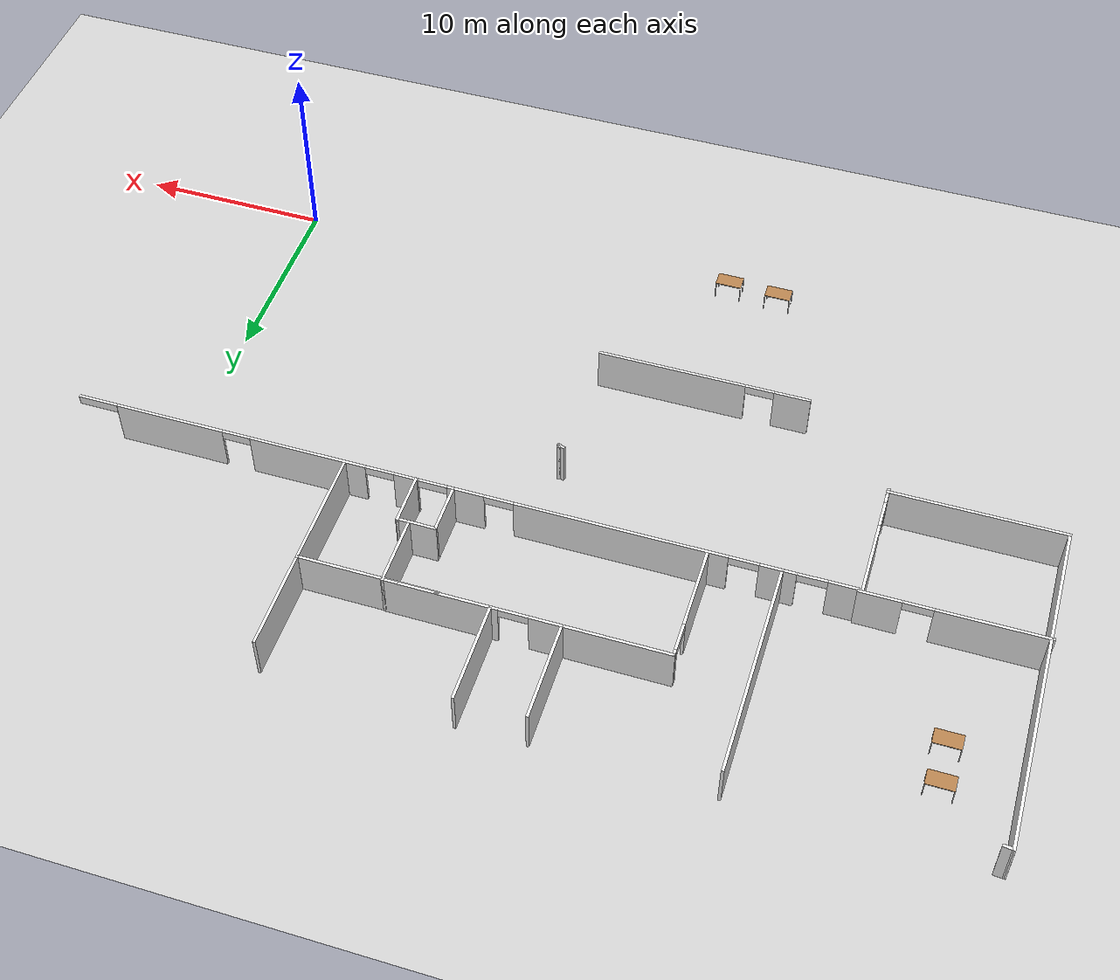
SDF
<sdf version="1.6">
 <world name="default">
  <model name="ground_plane">
   <static>1</static>
   <link name="link">
    <collision name="collision">
     <geometry><plane><normal>0 0 1</normal><size>100 100</size></plane></geometry>
     <surface><friction><ode><mu>100</mu><mu2>50</mu2></ode></friction></surface>
    </collision>
    <visual name="visual">
     <cast_shadows>0</cast_shadows>
     <geometry><plane><normal>0 0 1</normal><size>100 100</size></plane></geometry>
     <material>
      <script>
       <uri>model://office_env/materials/scripts</uri>
       <uri>model://office_env/materials/textures</uri>
       <name>wall</name>
      </script>
     </material>
    </visual>
   </link>
  </model>
  <model name="aule_N">
   <pose>0.1887 -1.4289 0 0 -0 0</pose>
   <link name="Wall_108">
    <collision name="Wall_108_Collision">
     <geometry><box><size>11.5 0.15 2.5</size></box></geometry>
     <pose>0 0 1.25 0 -0 0</pose>
    </collision>
    <visual name="Wall_108_Visual">
     <pose>0 0 1.25 0 -0 0</pose>
     <geometry><box><size>11.5 0.15 2.5</size></box></geometry>
     <material>
      <script>
       <uri>model://office_env/materials/scripts</uri>
       <uri>model://office_env/materials/textures</uri>
       <name>wall</name>
      </script>
      <ambient>1 1 1 1</ambient>
     </material>
    </visual>
    <pose>-31.5274 25.2751 0 0 0 -1.5708</pose>
   </link>
   <link name="Wall_109">
    <pose>-33.4524 19.6001 0 0 -0 3.14159</pose>
    <visual name="Wall_109_Visual_0">
     <pose>-1.60516 0 1.25 0 -0 0</pose>
     <geometry><box><size>0.789669 0.15 2.5</size></box></geometry>
     <material>
      <script>
       <uri>model://office_env/materials/scripts</uri>
       <uri>model://office_env/materials/textures</uri>
       <name>wall</name>
      </script>
      <ambient>1 1 1 1</ambient>
     </material>
    </visual>
    <collision name="Wall_109_Collision_0">
     <geometry><box><size>0.789669 0.15 2.5</size></box></geometry>
     <pose>-1.60516 0 1.25 0 -0 0</pose>
    </collision>
    <visual name="Wall_109_Visual_1">
     <pose>1.14484 0 1.25 0 -0 0</pose>
     <geometry><box><size>1.71033 0.15 2.5</size></box></geometry>
     <material>
      <script>
       <uri>model://office_env/materials/scripts</uri>
       <uri>model://office_env/materials/textures</uri>
       <name>wall</name>
      </script>
      <ambient>1 1 1 1</ambient>
     </material>
    </visual>
    <collision name="Wall_109_Collision_1">
     <geometry><box><size>1.71033 0.15 2.5</size></box></geometry>
     <pose>1.14484 0 1.25 0 -0 0</pose>
    </collision>
    <visual name="Wall_109_Visual_2">
     <pose>-0.460331 0 2.25 0 -0 0</pose>
     <geometry><box><size>1.5 0.15 0.5</size></box></geometry>
     <material>
      <script>
       <uri>model://office_env/materials/scripts</uri>
       <uri>model://office_env/materials/textures</uri>
       <name>wall</name>
      </script>
      <ambient>1 1 1 1</ambient>
     </material>
    </visual>
    <collision name="Wall_109_Collision_2">
     <geometry><box><size>1.5 0.15 0.5</size></box></geometry>
     <pose>-0.460331 0 2.25 0 -0 0</pose>
    </collision>
   </link>
   <link name="Wall_110">
    <pose>-35.3774 16.4251 0 0 0 -1.5708</pose>
    <visual name="Wall_110_Visual_0">
     <pose>-1.20846 0 1.25 0 -0 0</pose>
     <geometry><box><size>4.08308 0.15 2.5</size></box></geometry>
     <material>
      <script>
       <uri>model://office_env/materials/scripts</uri>
       <uri>model://office_env/materials/textures</uri>
       <name>wall</name>
      </script>
      <ambient>1 1 1 1</ambient>
     </material>
    </visual>
    <collision name="Wall_110_Collision_0">
     <geometry><box><size>4.08308 0.15 2.5</size></box></geometry>
     <pose>-1.20846 0 1.25 0 -0 0</pose>
    </collision>
    <visual name="Wall_110_Visual_1">
     <pose>2.79154 0 1.25 0 -0 0</pose>
     <geometry><box><size>0.91692 0.15 2.5</size></box></geometry>
     <material>
      <script>
       <uri>model://office_env/materials/scripts</uri>
       <uri>model://office_env/materials/textures</uri>
       <name>wall</name>
      </script>
      <ambient>1 1 1 1</ambient>
     </material>
    </visual>
    <collision name="Wall_110_Collision_1">
     <geometry><box><size>0.91692 0.15 2.5</size></box></geometry>
     <pose>2.79154 0 1.25 0 -0 0</pose>
    </collision>
    <visual name="Wall_110_Visual_2">
     <pose>1.58308 0 2.25 0 -0 0</pose>
     <geometry><box><size>1.5 0.15 0.5</size></box></geometry>
     <material>
      <script>
       <uri>model://office_env/materials/scripts</uri>
       <uri>model://office_env/materials/textures</uri>
       <name>wall</name>
      </script>
      <ambient>1 1 1 1</ambient>
     </material>
    </visual>
    <collision name="Wall_110_Collision_2">
     <geometry><box><size>1.5 0.15 0.5</size></box></geometry>
     <pose>1.58308 0 2.25 0 -0 0</pose>
    </collision>
   </link>
   <link name="Wall_112">
    <pose>-39.7703 19.7027 0 0 -0 0</pose>
    <visual name="Wall_112_Visual_0">
     <pose>-1.82458 0 1.25 0 -0 0</pose>
     <geometry><box><size>5.60084 0.15 2.5</size></box></geometry>
     <material>
      <script>
       <uri>model://office_env/materials/scripts</uri>
       <uri>model://office_env/materials/textures</uri>
       <name>wall</name>
      </script>
      <ambient>1 1 1 1</ambient>
     </material>
    </visual>
    <collision name="Wall_112_Collision_0">
     <geometry><box><size>5.60084 0.15 2.5</size></box></geometry>
     <pose>-1.82458 0 1.25 0 -0 0</pose>
    </collision>
    <visual name="Wall_112_Visual_1">
     <pose>3.55042 0 1.25 0 -0 0</pose>
     <geometry><box><size>2.14915 0.15 2.5</size></box></geometry>
     <material>
      <script>
       <uri>model://office_env/materials/scripts</uri>
       <uri>model://office_env/materials/textures</uri>
       <name>wall</name>
      </script>
      <ambient>1 1 1 1</ambient>
     </material>
    </visual>
    <collision name="Wall_112_Collision_1">
     <geometry><box><size>2.14915 0.15 2.5</size></box></geometry>
     <pose>3.55042 0 1.25 0 -0 0</pose>
    </collision>
    <visual name="Wall_112_Visual_2">
     <pose>1.72585 0 2.25 0 -0 0</pose>
     <geometry><box><size>1.5 0.15 0.5</size></box></geometry>
     <material>
      <script>
       <uri>model://office_env/materials/scripts</uri>
       <uri>model://office_env/materials/textures</uri>
       <name>wall</name>
      </script>
      <ambient>1 1 1 1</ambient>
     </material>
    </visual>
    <collision name="Wall_112_Collision_2">
     <geometry><box><size>1.5 0.15 0.5</size></box></geometry>
     <pose>1.72585 0 2.25 0 -0 0</pose>
    </collision>
   </link>
   <link name="Wall_117">
    <pose>-13.2274 19.6001 0 0 -0 0</pose>
    <visual name="Wall_117_Visual_0">
     <pose>-17.7796 0 1.25 0 -0 0</pose>
     <geometry><box><size>1.19077 0.15 2.5</size></box></geometry>
     <material>
      <script>
       <uri>model://office_env/materials/scripts</uri>
       <uri>model://office_env/materials/textures</uri>
       <name>wall</name>
      </script>
      <ambient>1 1 1 1</ambient>
     </material>
    </visual>
    <collision name="Wall_117_Collision_0">
     <geometry><box><size>1.19077 0.15 2.5</size></box></geometry>
     <pose>-17.7796 0 1.25 0 -0 0</pose>
    </collision>
    <visual name="Wall_117_Visual_1">
     <pose>-10.3016 0 1.25 0 -0 0</pose>
     <geometry><box><size>10.7652 0.15 2.5</size></box></geometry>
     <material>
      <script>
       <uri>model://office_env/materials/scripts</uri>
       <uri>model://office_env/materials/textures</uri>
       <name>wall</name>
      </script>
      <ambient>1 1 1 1</ambient>
     </material>
    </visual>
    <collision name="Wall_117_Collision_1">
     <geometry><box><size>10.7652 0.15 2.5</size></box></geometry>
     <pose>-10.3016 0 1.25 0 -0 0</pose>
    </collision>
    <visual name="Wall_117_Visual_2">
     <pose>-2.44962 0 1.25 0 -0 0</pose>
     <geometry><box><size>1.93872 0.15 2.5</size></box></geometry>
     <material>
      <script>
       <uri>model://office_env/materials/scripts</uri>
       <uri>model://office_env/materials/textures</uri>
       <name>wall</name>
      </script>
      <ambient>1 1 1 1</ambient>
     </material>
    </visual>
    <collision name="Wall_117_Collision_2">
     <geometry><box><size>1.93872 0.15 2.5</size></box></geometry>
     <pose>-2.44962 0 1.25 0 -0 0</pose>
    </collision>
    <visual name="Wall_117_Visual_3">
     <pose>0.6526 0 1.25 0 -0 0</pose>
     <geometry><box><size>1.26572 0.15 2.5</size></box></geometry>
     <material>
      <script>
       <uri>model://office_env/materials/scripts</uri>
       <uri>model://office_env/materials/textures</uri>
       <name>wall</name>
      </script>
      <ambient>1 1 1 1</ambient>
     </material>
    </visual>
    <collision name="Wall_117_Collision_3">
     <geometry><box><size>1.26572 0.15 2.5</size></box></geometry>
     <pose>0.6526 0 1.25 0 -0 0</pose>
    </collision>
    <visual name="Wall_117_Visual_4">
     <pose>5.87513 0 1.25 0 -0 0</pose>
     <geometry><box><size>6.17934 0.15 2.5</size></box></geometry>
     <material>
      <script>
       <uri>model://office_env/materials/scripts</uri>
       <uri>model://office_env/materials/textures</uri>
       <name>wall</name>
      </script>
      <ambient>1 1 1 1</ambient>
     </material>
    </visual>
    <collision name="Wall_117_Collision_4">
     <geometry><box><size>6.17934 0.15 2.5</size></box></geometry>
     <pose>5.87513 0 1.25 0 -0 0</pose>
    </collision>
    <visual name="Wall_117_Visual_5">
     <pose>13.3706 0 1.25 0 -0 0</pose>
     <geometry><box><size>5.81158 0.15 2.5</size></box></geometry>
     <material>
      <script>
       <uri>model://office_env/materials/scripts</uri>
       <uri>model://office_env/materials/textures</uri>
       <name>wall</name>
      </script>
      <ambient>1 1 1 1</ambient>
     </material>
    </visual>
    <collision name="Wall_117_Collision_5">
     <geometry><box><size>5.81158 0.15 2.5</size></box></geometry>
     <pose>13.3706 0 1.25 0 -0 0</pose>
    </collision>
    <visual name="Wall_117_Visual_6">
     <pose>-16.4342 0 2.25 0 -0 0</pose>
     <geometry><box><size>1.5 0.15 0.5</size></box></geometry>
     <material>
      <script>
       <uri>model://office_env/materials/scripts</uri>
       <uri>model://office_env/materials/textures</uri>
       <name>wall</name>
      </script>
      <ambient>1 1 1 1</ambient>
     </material>
    </visual>
    <collision name="Wall_117_Collision_6">
     <geometry><box><size>1.5 0.15 0.5</size></box></geometry>
     <pose>-16.4342 0 2.25 0 -0 0</pose>
    </collision>
    <visual name="Wall_117_Visual_7">
     <pose>-4.16898 0 2.25 0 -0 0</pose>
     <geometry><box><size>1.5 0.15 0.5</size></box></geometry>
     <material>
      <script>
       <uri>model://office_env/materials/scripts</uri>
       <uri>model://office_env/materials/textures</uri>
       <name>wall</name>
      </script>
      <ambient>1 1 1 1</ambient>
     </material>
    </visual>
    <collision name="Wall_117_Collision_7">
     <geometry><box><size>1.5 0.15 0.5</size></box></geometry>
     <pose>-4.16898 0 2.25 0 -0 0</pose>
    </collision>
    <visual name="Wall_117_Visual_8">
     <pose>-0.73026 0 2.25 0 -0 0</pose>
     <geometry><box><size>1.5 0.15 0.5</size></box></geometry>
     <material>
      <script>
       <uri>model://office_env/materials/scripts</uri>
       <uri>model://office_env/materials/textures</uri>
       <name>wall</name>
      </script>
      <ambient>1 1 1 1</ambient>
     </material>
    </visual>
    <collision name="Wall_117_Collision_8">
     <geometry><box><size>1.5 0.15 0.5</size></box></geometry>
     <pose>-0.73026 0 2.25 0 -0 0</pose>
    </collision>
    <visual name="Wall_117_Visual_9">
     <pose>2.03546 0 2.25 0 -0 0</pose>
     <geometry><box><size>1.5 0.15 0.5</size></box></geometry>
     <material>
      <script>
       <uri>model://office_env/materials/scripts</uri>
       <uri>model://office_env/materials/textures</uri>
       <name>wall</name>
      </script>
      <ambient>1 1 1 1</ambient>
     </material>
    </visual>
    <collision name="Wall_117_Collision_9">
     <geometry><box><size>1.5 0.15 0.5</size></box></geometry>
     <pose>2.03546 0 2.25 0 -0 0</pose>
    </collision>
    <visual name="Wall_117_Visual_10">
     <pose>9.7148 0 2.25 0 -0 0</pose>
     <geometry><box><size>1.5 0.15 0.5</size></box></geometry>
     <material>
      <script>
       <uri>model://office_env/materials/scripts</uri>
       <uri>model://office_env/materials/textures</uri>
       <name>wall</name>
      </script>
      <ambient>1 1 1 1</ambient>
     </material>
    </visual>
    <collision name="Wall_117_Collision_10">
     <geometry><box><size>1.5 0.15 0.5</size></box></geometry>
     <pose>9.7148 0 2.25 0 -0 0</pose>
    </collision>
    <visual name="Wall_117_Visual_11">
     <pose>17.3257 0 2.25 0 -0 0</pose>
     <geometry><box><size>2.09862 0.15 0.5</size></box></geometry>
     <material>
      <script>
       <uri>model://office_env/materials/scripts</uri>
       <uri>model://office_env/materials/textures</uri>
       <name>wall</name>
      </script>
      <ambient>1 1 1 1</ambient>
     </material>
    </visual>
    <collision name="Wall_117_Collision_11">
     <geometry><box><size>2.09862 0.15 0.5</size></box></geometry>
     <pose>17.3257 0 2.25 0 -0 0</pose>
    </collision>
   </link>
   <link name="Wall_121">
    <collision name="Wall_121_Collision">
     <geometry><box><size>5.25 0.15 2.5</size></box></geometry>
     <pose>0 0 1.25 0 -0 0</pose>
    </collision>
    <visual name="Wall_121_Visual">
     <pose>0 0 1.25 0 -0 0</pose>
     <geometry><box><size>5.25 0.15 2.5</size></box></geometry>
     <material>
      <script>
       <uri>model://office_env/materials/scripts</uri>
       <uri>model://office_env/materials/textures</uri>
       <name>wall</name>
      </script>
      <ambient>1 1 1 1</ambient>
     </material>
    </visual>
    <pose>-22.5458 28.3464 0 0 0 -1.5708</pose>
   </link>
   <link name="Wall_122">
    <collision name="Wall_122_Collision">
     <geometry><box><size>5.5 0.15 2.5</size></box></geometry>
     <pose>0 0 1.25 0 -0 0</pose>
    </collision>
    <visual name="Wall_122_Visual">
     <pose>0 0 1.25 0 -0 0</pose>
     <geometry><box><size>5.5 0.15 2.5</size></box></geometry>
     <material>
      <script>
       <uri>model://office_env/materials/scripts</uri>
       <uri>model://office_env/materials/textures</uri>
       <name>wall</name>
      </script>
      <ambient>1 1 1 1</ambient>
     </material>
    </visual>
    <pose>-25.2208 25.7964 0 0 -0 3.14159</pose>
   </link>
   <link name="Wall_123">
    <pose>-27.8958 22.7464 0 0 0 -1.5708</pose>
    <visual name="Wall_123_Visual_0">
     <pose>-2.93611 0 1.25 0 -0 0</pose>
     <geometry><box><size>0.377789 0.15 2.5</size></box></geometry>
     <material>
      <script>
       <uri>model://office_env/materials/scripts</uri>
       <uri>model://office_env/materials/textures</uri>
       <name>wall</name>
      </script>
      <ambient>1 1 1 1</ambient>
     </material>
    </visual>
    <collision name="Wall_123_Collision_0">
     <geometry><box><size>0.377789 0.15 2.5</size></box></geometry>
     <pose>-2.93611 0 1.25 0 -0 0</pose>
    </collision>
    <visual name="Wall_123_Visual_1">
     <pose>0.938894 0 1.25 0 -0 0</pose>
     <geometry><box><size>4.37221 0.15 2.5</size></box></geometry>
     <material>
      <script>
       <uri>model://office_env/materials/scripts</uri>
       <uri>model://office_env/materials/textures</uri>
       <name>wall</name>
      </script>
      <ambient>1 1 1 1</ambient>
     </material>
    </visual>
    <collision name="Wall_123_Collision_1">
     <geometry><box><size>4.37221 0.15 2.5</size></box></geometry>
     <pose>0.938894 0 1.25 0 -0 0</pose>
    </collision>
    <visual name="Wall_123_Visual_2">
     <pose>-1.99721 0 2.25 0 -0 0</pose>
     <geometry><box><size>1.5 0.15 0.5</size></box></geometry>
     <material>
      <script>
       <uri>model://office_env/materials/scripts</uri>
       <uri>model://office_env/materials/textures</uri>
       <name>wall</name>
      </script>
      <ambient>1 1 1 1</ambient>
     </material>
    </visual>
    <collision name="Wall_123_Collision_2">
     <geometry><box><size>1.5 0.15 0.5</size></box></geometry>
     <pose>-1.99721 0 2.25 0 -0 0</pose>
    </collision>
   </link>
   <link name="Wall_125">
    <pose>-18.1208 25.7964 0 0 -0 0</pose>
    <visual name="Wall_125_Visual_0">
     <pose>-3.65851 0 1.25 0 -0 0</pose>
     <geometry><box><size>1.68298 0.15 2.5</size></box></geometry>
     <material>
      <script>
       <uri>model://office_env/materials/scripts</uri>
       <uri>model://office_env/materials/textures</uri>
       <name>wall</name>
      </script>
      <ambient>1 1 1 1</ambient>
     </material>
    </visual>
    <collision name="Wall_125_Collision_0">
     <geometry><box><size>1.68298 0.15 2.5</size></box></geometry>
     <pose>-3.65851 0 1.25 0 -0 0</pose>
    </collision>
    <visual name="Wall_125_Visual_1">
     <pose>1.59149 0 1.25 0 -0 0</pose>
     <geometry><box><size>5.81702 0.15 2.5</size></box></geometry>
     <material>
      <script>
       <uri>model://office_env/materials/scripts</uri>
       <uri>model://office_env/materials/textures</uri>
       <name>wall</name>
      </script>
      <ambient>1 1 1 1</ambient>
     </material>
    </visual>
    <collision name="Wall_125_Collision_1">
     <geometry><box><size>5.81702 0.15 2.5</size></box></geometry>
     <pose>1.59149 0 1.25 0 -0 0</pose>
    </collision>
    <visual name="Wall_125_Visual_2">
     <pose>-2.06702 0 2.25 0 -0 0</pose>
     <geometry><box><size>1.5 0.15 0.5</size></box></geometry>
     <material>
      <script>
       <uri>model://office_env/materials/scripts</uri>
       <uri>model://office_env/materials/textures</uri>
       <name>wall</name>
      </script>
      <ambient>1 1 1 1</ambient>
     </material>
    </visual>
    <collision name="Wall_125_Collision_2">
     <geometry><box><size>1.5 0.15 0.5</size></box></geometry>
     <pose>-2.06702 0 2.25 0 -0 0</pose>
    </collision>
   </link>
   <link name="Wall_126">
    <collision name="Wall_126_Collision">
     <geometry><box><size>3.75 0.15 2.5</size></box></geometry>
     <pose>0 0 1.25 0 -0 0</pose>
    </collision>
    <visual name="Wall_126_Visual">
     <pose>0 0 1.25 0 -0 0</pose>
     <geometry><box><size>3.75 0.15 2.5</size></box></geometry>
     <material>
      <script>
       <uri>model://office_env/materials/scripts</uri>
       <uri>model://office_env/materials/textures</uri>
       <name>wall</name>
      </script>
      <ambient>1 1 1 1</ambient>
     </material>
    </visual>
    <pose>-13.6958 23.9964 0 0 0 -1.5708</pose>
   </link>
   <link name="Wall_127">
    <collision name="Wall_127_Collision">
     <geometry><box><size>1.5 0.15 2.5</size></box></geometry>
     <pose>0 0 1.25 0 -0 0</pose>
    </collision>
    <visual name="Wall_127_Visual">
     <pose>0 0 1.25 0 -0 0</pose>
     <geometry><box><size>1.5 0.15 2.5</size></box></geometry>
     <material>
      <script>
       <uri>model://office_env/materials/scripts</uri>
       <uri>model://office_env/materials/textures</uri>
       <name>wall</name>
      </script>
      <ambient>1 1 1 1</ambient>
     </material>
    </visual>
    <pose>-14.3708 22.1964 0 0 -0 3.14159</pose>
   </link>
   <link name="Wall_128">
    <collision name="Wall_128_Collision">
     <geometry><box><size>2.75 0.15 2.5</size></box></geometry>
     <pose>0 0 1.25 0 -0 0</pose>
    </collision>
    <visual name="Wall_128_Visual">
     <pose>0 0 1.25 0 -0 0</pose>
     <geometry><box><size>2.75 0.15 2.5</size></box></geometry>
     <material>
      <script>
       <uri>model://office_env/materials/scripts</uri>
       <uri>model://office_env/materials/textures</uri>
       <name>wall</name>
      </script>
      <ambient>1 1 1 1</ambient>
     </material>
    </visual>
    <pose>-15.0458 20.8964 0 0 0 -1.5708</pose>
   </link>
   <link name="Wall_13">
    <collision name="Wall_13_Collision">
     <geometry><box><size>17.75 0.15 2.5</size></box></geometry>
     <pose>0 0 1.25 0 -0 0</pose>
    </collision>
    <visual name="Wall_13_Visual">
     <pose>0 0 1.25 0 -0 0</pose>
     <geometry><box><size>17.75 0.15 2.5</size></box></geometry>
     <material>
      <script>
       <uri>model://office_env/materials/scripts</uri>
       <uri>model://office_env/materials/textures</uri>
       <name>wall</name>
      </script>
      <ambient>1 1 1 1</ambient>
     </material>
    </visual>
    <pose>-44.2144 22.183 0 0 0 -1.5708</pose>
   </link>
   <link name="Wall_130">
    <collision name="Wall_130_Collision">
     <geometry><box><size>5.25 0.15 2.5</size></box></geometry>
     <pose>0 0 1.25 0 -0 0</pose>
    </collision>
    <visual name="Wall_130_Visual">
     <pose>0 0 1.25 0 -0 0</pose>
     <geometry><box><size>5.25 0.15 2.5</size></box></geometry>
     <material>
      <script>
       <uri>model://office_env/materials/scripts</uri>
       <uri>model://office_env/materials/textures</uri>
       <name>wall</name>
      </script>
      <ambient>1 1 1 1</ambient>
     </material>
    </visual>
    <pose>-19.0551 28.4267 0 0 0 -1.5708</pose>
   </link>
   <link name="Wall_132">
    <collision name="Wall_132_Collision">
     <geometry><box><size>0.75 0.15 2.5</size></box></geometry>
     <pose>0 0 1.25 0 -0 0</pose>
    </collision>
    <visual name="Wall_132_Visual">
     <pose>0 0 1.25 0 -0 0</pose>
     <geometry><box><size>0.75 0.15 2.5</size></box></geometry>
     <material>
      <script>
       <uri>model://office_env/materials/scripts</uri>
       <uri>model://office_env/materials/textures</uri>
       <name>wall</name>
      </script>
      <ambient>1 1 1 1</ambient>
     </material>
    </visual>
    <pose>-13.3958 22.1964 0 0 -0 0</pose>
   </link>
   <link name="Wall_133">
    <collision name="Wall_133_Collision">
     <geometry><box><size>2.75 0.15 2.5</size></box></geometry>
     <pose>0 0 1.25 0 -0 0</pose>
    </collision>
    <visual name="Wall_133_Visual">
     <pose>0 0 1.25 0 -0 0</pose>
     <geometry><box><size>2.75 0.15 2.5</size></box></geometry>
     <material>
      <script>
       <uri>model://office_env/materials/scripts</uri>
       <uri>model://office_env/materials/textures</uri>
       <name>wall</name>
      </script>
      <ambient>1 1 1 1</ambient>
     </material>
    </visual>
    <pose>-13.0958 20.8964 0 0 0 -1.5708</pose>
   </link>
   <link name="Wall_135">
    <pose>-12.9035 25.7612 0 0 -0 0</pose>
    <visual name="Wall_135_Visual_0">
     <pose>-3.3201 0 1.25 0 -0 0</pose>
     <geometry><box><size>0.60979 0.15 2.5</size></box></geometry>
     <material>
      <script>
       <uri>model://office_env/materials/scripts</uri>
       <uri>model://office_env/materials/textures</uri>
       <name>wall</name>
      </script>
      <ambient>1 1 1 1</ambient>
     </material>
    </visual>
    <collision name="Wall_135_Collision_0">
     <geometry><box><size>0.60979 0.15 2.5</size></box></geometry>
     <pose>-3.3201 0 1.25 0 -0 0</pose>
    </collision>
    <visual name="Wall_135_Visual_1">
     <pose>1.05489 0 1.25 0 -0 0</pose>
     <geometry><box><size>5.14021 0.15 2.5</size></box></geometry>
     <material>
      <script>
       <uri>model://office_env/materials/scripts</uri>
       <uri>model://office_env/materials/textures</uri>
       <name>wall</name>
      </script>
      <ambient>1 1 1 1</ambient>
     </material>
    </visual>
    <collision name="Wall_135_Collision_1">
     <geometry><box><size>5.14021 0.15 2.5</size></box></geometry>
     <pose>1.05489 0 1.25 0 -0 0</pose>
    </collision>
    <visual name="Wall_135_Visual_2">
     <pose>-2.26521 0 2.25 0 -0 0</pose>
     <geometry><box><size>1.5 0.15 0.5</size></box></geometry>
     <material>
      <script>
       <uri>model://office_env/materials/scripts</uri>
       <uri>model://office_env/materials/textures</uri>
       <name>wall</name>
      </script>
      <ambient>1 1 1 1</ambient>
     </material>
    </visual>
    <collision name="Wall_135_Collision_2">
     <geometry><box><size>1.5 0.15 0.5</size></box></geometry>
     <pose>-2.26521 0 2.25 0 -0 0</pose>
    </collision>
   </link>
   <link name="Wall_136">
    <collision name="Wall_136_Collision">
     <geometry><box><size>5.25 0.15 2.5</size></box></geometry>
     <pose>0 0 1.25 0 -0 0</pose>
    </collision>
    <visual name="Wall_136_Visual">
     <pose>0 0 1.25 0 -0 0</pose>
     <geometry><box><size>5.25 0.15 2.5</size></box></geometry>
     <material>
      <script>
       <uri>model://office_env/materials/scripts</uri>
       <uri>model://office_env/materials/textures</uri>
       <name>wall</name>
      </script>
      <ambient>1 1 1 1</ambient>
     </material>
    </visual>
    <pose>-9.35351 28.3112 0 0 -0 1.5708</pose>
   </link>
   <link name="Wall_138">
    <collision name="Wall_138_Collision">
     <geometry><box><size>6.25 0.15 2.5</size></box></geometry>
     <pose>0 0 1.25 0 -0 0</pose>
    </collision>
    <visual name="Wall_138_Visual">
     <pose>0 0 1.25 0 -0 0</pose>
     <geometry><box><size>6.25 0.15 2.5</size></box></geometry>
     <material>
      <script>
       <uri>model://office_env/materials/scripts</uri>
       <uri>model://office_env/materials/textures</uri>
       <name>wall</name>
      </script>
      <ambient>1 1 1 1</ambient>
     </material>
    </visual>
    <pose>-9.35351 22.7112 0 0 0 -1.5708</pose>
   </link>
   <link name="Wall_14">
    <collision name="Wall_14_Collision">
     <geometry><box><size>9 0.15 2.5</size></box></geometry>
     <pose>0 0 1.25 0 -0 0</pose>
    </collision>
    <visual name="Wall_14_Visual">
     <pose>0 0 1.25 0 -0 0</pose>
     <geometry><box><size>9 0.15 2.5</size></box></geometry>
     <material>
      <script>
       <uri>model://office_env/materials/scripts</uri>
       <uri>model://office_env/materials/textures</uri>
       <name>wall</name>
      </script>
      <ambient>1 1 1 1</ambient>
     </material>
    </visual>
    <pose>-39.7894 13.383 0 0 -0 0</pose>
   </link>
   <link name="Wall_43">
    <collision name="Wall_43_Collision">
     <geometry><box><size>0.586314 0.15 2.5</size></box></geometry>
     <pose>0 0 1.25 0 -0 0</pose>
    </collision>
    <visual name="Wall_43_Visual">
     <pose>0 0 1.25 0 -0 0</pose>
     <geometry><box><size>0.586314 0.15 2.5</size></box></geometry>
     <material>
      <script>
       <uri>model://office_env/materials/scripts</uri>
       <uri>model://office_env/materials/textures</uri>
       <name>wall</name>
      </script>
      <ambient>1 1 1 1</ambient>
     </material>
    </visual>
    <pose>-43.9971 30.9642 0 0 -0 3.05558</pose>
   </link>
   <link name="Wall_49">
    <collision name="Wall_49_Collision">
     <geometry><box><size>0.25 0.15 2.5</size></box></geometry>
     <pose>0 0 1.25 0 -0 0</pose>
    </collision>
    <visual name="Wall_49_Visual">
     <pose>0 0 1.25 0 -0 0</pose>
     <geometry><box><size>0.25 0.15 2.5</size></box></geometry>
     <material>
      <script>
       <uri>model://office_env/materials/scripts</uri>
       <uri>model://office_env/materials/textures</uri>
       <name>wall</name>
      </script>
      <ambient>1 1 1 1</ambient>
     </material>
    </visual>
    <pose>-19.1442 15.4156 0 0 0 -1.309</pose>
   </link>
   <link name="Wall_50">
    <collision name="Wall_50_Collision">
     <geometry><box><size>0.25 0.15 2.5</size></box></geometry>
     <pose>0 0 1.25 0 -0 0</pose>
    </collision>
    <visual name="Wall_50_Visual">
     <pose>0 0 1.25 0 -0 0</pose>
     <geometry><box><size>0.25 0.15 2.5</size></box></geometry>
     <material>
      <script>
       <uri>model://office_env/materials/scripts</uri>
       <uri>model://office_env/materials/textures</uri>
       <name>wall</name>
      </script>
      <ambient>1 1 1 1</ambient>
     </material>
    </visual>
    <pose>-19.1442 15.4156 0 0 -0 1.8326</pose>
   </link>
   <link name="Wall_51">
    <collision name="Wall_51_Collision">
     <geometry><box><size>0.25 0.15 2.5</size></box></geometry>
     <pose>0 0 1.25 0 -0 0</pose>
    </collision>
    <visual name="Wall_51_Visual">
     <pose>0 0 1.25 0 -0 0</pose>
     <geometry><box><size>0.25 0.15 2.5</size></box></geometry>
     <material>
      <script>
       <uri>model://office_env/materials/scripts</uri>
       <uri>model://office_env/materials/textures</uri>
       <name>wall</name>
      </script>
      <ambient>1 1 1 1</ambient>
     </material>
    </visual>
    <pose>-19.1442 15.4156 0 0 0 -1.309</pose>
   </link>
   <link name="Wall_52">
    <collision name="Wall_52_Collision">
     <geometry><box><size>0.442303 0.15 2.5</size></box></geometry>
     <pose>0 0 1.25 0 -0 0</pose>
    </collision>
    <visual name="Wall_52_Visual">
     <pose>0 0 1.25 0 -0 0</pose>
     <geometry><box><size>0.442303 0.15 2.5</size></box></geometry>
     <material>
      <script>
       <uri>model://office_env/materials/scripts</uri>
       <uri>model://office_env/materials/textures</uri>
       <name>wall</name>
      </script>
      <ambient>1 1 1 1</ambient>
     </material>
    </visual>
    <pose>-19.2692 15.4156 0 0 -0 2.80481</pose>
   </link>
   <link name="Wall_60">
    <pose>-24.8555 8.68568 0 0 -0 3.14159</pose>
    <visual name="Wall_60_Visual_0">
     <pose>-1.70985 0 1.25 0 -0 0</pose>
     <geometry><box><size>7.83031 0.15 2.5</size></box></geometry>
     <material>
      <script>
       <uri>model://office_env/materials/scripts</uri>
       <uri>model://office_env/materials/textures</uri>
       <name>wall</name>
      </script>
      <ambient>1 1 1 1</ambient>
     </material>
    </visual>
    <collision name="Wall_60_Collision_0">
     <geometry><box><size>7.83031 0.15 2.5</size></box></geometry>
     <pose>-1.70985 0 1.25 0 -0 0</pose>
    </collision>
    <visual name="Wall_60_Visual_1">
     <pose>4.66516 0 1.25 0 -0 0</pose>
     <geometry><box><size>1.91969 0.15 2.5</size></box></geometry>
     <material>
      <script>
       <uri>model://office_env/materials/scripts</uri>
       <uri>model://office_env/materials/textures</uri>
       <name>wall</name>
      </script>
      <ambient>1 1 1 1</ambient>
     </material>
    </visual>
    <collision name="Wall_60_Collision_1">
     <geometry><box><size>1.91969 0.15 2.5</size></box></geometry>
     <pose>4.66516 0 1.25 0 -0 0</pose>
    </collision>
    <visual name="Wall_60_Visual_2">
     <pose>2.95531 0 2.25 0 -0 0</pose>
     <geometry><box><size>1.5 0.15 0.5</size></box></geometry>
     <material>
      <script>
       <uri>model://office_env/materials/scripts</uri>
       <uri>model://office_env/materials/textures</uri>
       <name>wall</name>
      </script>
      <ambient>1 1 1 1</ambient>
     </material>
    </visual>
    <collision name="Wall_60_Collision_2">
     <geometry><box><size>1.5 0.15 0.5</size></box></geometry>
     <pose>2.95531 0 2.25 0 -0 0</pose>
    </collision>
   </link>
   <static>1</static>
  </model>
  <model name="table_2">
   <static>0</static>
   <link name="link">
    <collision name="surface">
     <pose>0 0 1 0 -0 0</pose>
     <geometry><box><size>1.5 0.8 0.03</size></box></geometry>
     <surface><friction><ode><mu>0.6</mu><mu2>0.6</mu2></ode></friction></surface>
    </collision>
    <visual name="visual1">
     <pose>0 0 1 0 -0 0</pose>
     <geometry><box><size>1.4 0.8 0.04</size></box></geometry>
     <material>
      <script><uri>file://media/materials/scripts/gazebo.material</uri><name>Gazebo/Wood</name></script>
     </material>
    </visual>
    <collision name="front_left_leg">
     <pose>0.68 0.38 0.5 0 -0 0</pose>
     <geometry><cylinder><radius>0.02</radius><length>1</length></cylinder></geometry>
    </collision>
    <visual name="front_left_leg">
     <pose>0.68 0.38 0.5 0 -0 0</pose>
     <geometry><cylinder><radius>0.02</radius><length>1</length></cylinder></geometry>
     <material>
      <script>
       <uri>model://office_env/materials/scripts</uri>
       <uri>model://office_env/materials/textures</uri>
       <name>wall</name>
      </script>
     </material>
    </visual>
    <collision name="front_right_leg">
     <pose>0.68 -0.38 0.5 0 -0 0</pose>
     <geometry><cylinder><radius>0.02</radius><length>1</length></cylinder></geometry>
    </collision>
    <visual name="front_right_leg">
     <pose>0.68 -0.38 0.5 0 -0 0</pose>
     <geometry><cylinder><radius>0.02</radius><length>1</length></cylinder></geometry>
     <material>
      <script>
       <uri>model://office_env/materials/scripts</uri>
       <uri>model://office_env/materials/textures</uri>
       <name>wall</name>
      </script>
     </material>
    </visual>
    <collision name="back_right_leg">
     <pose>-0.68 -0.38 0.5 0 -0 0</pose>
     <geometry><cylinder><radius>0.02</radius><length>1</length></cylinder></geometry>
    </collision>
    <visual name="back_right_leg">
     <pose>-0.68 -0.38 0.5 0 -0 0</pose>
     <geometry><cylinder><radius>0.02</radius><length>1</length></cylinder></geometry>
     <material>
      <script>
       <uri>model://office_env/materials/scripts</uri>
       <uri>model://office_env/materials/textures</uri>
       <name>wall</name>
      </script>
     </material>
    </visual>
    <collision name="back_left_leg">
     <pose>-0.68 0.38 0.5 0 -0 0</pose>
     <geometry><cylinder><radius>0.02</radius><length>1</length></cylinder></geometry>
    </collision>
    <visual name="back_left_leg">
     <pose>-0.68 0.38 0.5 0 -0 0</pose>
     <geometry><cylinder><radius>0.02</radius><length>1</length></cylinder></geometry>
     <material>
      <script>
       <uri>model://office_env/materials/scripts</uri>
       <uri>model://office_env/materials/textures</uri>
       <name>wall</name>
      </script>
     </material>
    </visual>
    <inertial>
     <inertia><ixx>1</ixx><ixy>0</ixy><ixz>0</ixz><iyy>1</iyy><iyz>0</iyz><izz>1</izz></inertia>
     <mass>1</mass>
    </inertial>
   </link>
   <pose>-40.5629 26.2425 0.009992 0 -0 0</pose>
  </model>
  <model name="table_3">
   <static>0</static>
   <link name="link">
    <collision name="surface">
     <pose>0 0 1 0 -0 0</pose>
     <geometry><box><size>1.5 0.8 0.03</size></box></geometry>
     <surface><friction><ode><mu>0.6</mu><mu2>0.6</mu2></ode></friction></surface>
    </collision>
    <visual name="visual1">
     <pose>0 0 1 0 -0 0</pose>
     <geometry><box><size>1.4 0.8 0.04</size></box></geometry>
     <material>
      <script><uri>file://media/materials/scripts/gazebo.material</uri><name>Gazebo/Wood</name></script>
     </material>
    </visual>
    <collision name="front_left_leg">
     <pose>0.68 0.38 0.5 0 -0 0</pose>
     <geometry><cylinder><radius>0.02</radius><length>1</length></cylinder></geometry>
    </collision>
    <visual name="front_left_leg">
     <pose>0.68 0.38 0.5 0 -0 0</pose>
     <geometry><cylinder><radius>0.02</radius><length>1</length></cylinder></geometry>
     <material>
      <script>
       <uri>model://office_env/materials/scripts</uri>
       <uri>model://office_env/materials/textures</uri>
       <name>wall</name>
      </script>
     </material>
    </visual>
    <collision name="front_right_leg">
     <pose>0.68 -0.38 0.5 0 -0 0</pose>
     <geometry><cylinder><radius>0.02</radius><length>1</length></cylinder></geometry>
    </collision>
    <visual name="front_right_leg">
     <pose>0.68 -0.38 0.5 0 -0 0</pose>
     <geometry><cylinder><radius>0.02</radius><length>1</length></cylinder></geometry>
     <material>
      <script>
       <uri>model://office_env/materials/scripts</uri>
       <uri>model://office_env/materials/textures</uri>
       <name>wall</name>
      </script>
     </material>
    </visual>
    <collision name="back_right_leg">
     <pose>-0.68 -0.38 0.5 0 -0 0</pose>
     <geometry><cylinder><radius>0.02</radius><length>1</length></cylinder></geometry>
    </collision>
    <visual name="back_right_leg">
     <pose>-0.68 -0.38 0.5 0 -0 0</pose>
     <geometry><cylinder><radius>0.02</radius><length>1</length></cylinder></geometry>
     <material>
      <script>
       <uri>model://office_env/materials/scripts</uri>
       <uri>model://office_env/materials/textures</uri>
       <name>wall</name>
      </script>
     </material>
    </visual>
    <collision name="back_left_leg">
     <pose>-0.68 0.38 0.5 0 -0 0</pose>
     <geometry><cylinder><radius>0.02</radius><length>1</length></cylinder></geometry>
    </collision>
    <visual name="back_left_leg">
     <pose>-0.68 0.38 0.5 0 -0 0</pose>
     <geometry><cylinder><radius>0.02</radius><length>1</length></cylinder></geometry>
     <material>
      <script>
       <uri>model://office_env/materials/scripts</uri>
       <uri>model://office_env/materials/textures</uri>
       <name>wall</name>
      </script>
     </material>
    </visual>
    <inertial>
     <inertia><ixx>1</ixx><ixy>0</ixy><ixz>0</ixz><iyy>1</iyy><iyz>0</iyz><izz>1</izz></inertia>
     <mass>1</mass>
    </inertial>
   </link>
   <pose>-40.4919 24.0377 0.009992 0 -0 0</pose>
  </model>
  <model name="table_23">
   <static>0</static>
   <link name="link">
    <collision name="surface">
     <pose>0 0 1 0 -0 0</pose>
     <geometry><box><size>1.5 0.8 0.03</size></box></geometry>
     <surface><friction><ode><mu>0.6</mu><mu2>0.6</mu2></ode></friction></surface>
    </collision>
    <visual name="visual1">
     <pose>0 0 1 0 -0 0</pose>
     <geometry><box><size>1.4 0.8 0.04</size></box></geometry>
     <material>
      <script><uri>file://media/materials/scripts/gazebo.material</uri><name>Gazebo/Wood</name></script>
     </material>
    </visual>
    <collision name="front_left_leg">
     <pose>0.68 0.38 0.5 0 -0 0</pose>
     <geometry><cylinder><radius>0.02</radius><length>1</length></cylinder></geometry>
    </collision>
    <visual name="front_left_leg">
     <pose>0.68 0.38 0.5 0 -0 0</pose>
     <geometry><cylinder><radius>0.02</radius><length>1</length></cylinder></geometry>
     <material>
      <script>
       <uri>model://office_env/materials/scripts</uri>
       <uri>model://office_env/materials/textures</uri>
       <name>wall</name>
      </script>
     </material>
    </visual>
    <collision name="front_right_leg">
     <pose>0.68 -0.38 0.5 0 -0 0</pose>
     <geometry><cylinder><radius>0.02</radius><length>1</length></cylinder></geometry>
    </collision>
    <visual name="front_right_leg">
     <pose>0.68 -0.38 0.5 0 -0 0</pose>
     <geometry><cylinder><radius>0.02</radius><length>1</length></cylinder></geometry>
     <material>
      <script>
       <uri>model://office_env/materials/scripts</uri>
       <uri>model://office_env/materials/textures</uri>
       <name>wall</name>
      </script>
     </material>
    </visual>
    <collision name="back_right_leg">
     <pose>-0.68 -0.38 0.5 0 -0 0</pose>
     <geometry><cylinder><radius>0.02</radius><length>1</length></cylinder></geometry>
    </collision>
    <visual name="back_right_leg">
     <pose>-0.68 -0.38 0.5 0 -0 0</pose>
     <geometry><cylinder><radius>0.02</radius><length>1</length></cylinder></geometry>
     <material>
      <script>
       <uri>model://office_env/materials/scripts</uri>
       <uri>model://office_env/materials/textures</uri>
       <name>wall</name>
      </script>
     </material>
    </visual>
    <collision name="back_left_leg">
     <pose>-0.68 0.38 0.5 0 -0 0</pose>
     <geometry><cylinder><radius>0.02</radius><length>1</length></cylinder></geometry>
    </collision>
    <visual name="back_left_leg">
     <pose>-0.68 0.38 0.5 0 -0 0</pose>
     <geometry><cylinder><radius>0.02</radius><length>1</length></cylinder></geometry>
     <material>
      <script>
       <uri>model://office_env/materials/scripts</uri>
       <uri>model://office_env/materials/textures</uri>
       <name>wall</name>
      </script>
     </material>
    </visual>
    <inertial>
     <inertia><ixx>1</ixx><ixy>0</ixy><ixz>0</ixz><iyy>1</iyy><iyz>0</iyz><izz>1</izz></inertia>
     <mass>1</mass>
    </inertial>
   </link>
   <pose>-23.9843 -1.37996 0.009992 0 -0 0</pose>
  </model>
  <model name="table_30">
   <static>0</static>
   <link name="link">
    <collision name="surface">
     <pose>0 0 1 0 -0 0</pose>
     <geometry><box><size>1.5 0.8 0.03</size></box></geometry>
     <surface><friction><ode><mu>0.6</mu><mu2>0.6</mu2></ode></friction></surface>
    </collision>
    <visual name="visual1">
     <pose>0 0 1 0 -0 0</pose>
     <geometry><box><size>1.4 0.8 0.04</size></box></geometry>
     <material>
      <script><uri>file://media/materials/scripts/gazebo.material</uri><name>Gazebo/Wood</name></script>
     </material>
    </visual>
    <collision name="front_left_leg">
     <pose>0.68 0.38 0.5 0 -0 0</pose>
     <geometry><cylinder><radius>0.02</radius><length>1</length></cylinder></geometry>
    </collision>
    <visual name="front_left_leg">
     <pose>0.68 0.38 0.5 0 -0 0</pose>
     <geometry><cylinder><radius>0.02</radius><length>1</length></cylinder></geometry>
     <material>
      <script>
       <uri>model://office_env/materials/scripts</uri>
       <uri>model://office_env/materials/textures</uri>
       <name>wall</name>
      </script>
     </material>
    </visual>
    <collision name="front_right_leg">
     <pose>0.68 -0.38 0.5 0 -0 0</pose>
     <geometry><cylinder><radius>0.02</radius><length>1</length></cylinder></geometry>
    </collision>
    <visual name="front_right_leg">
     <pose>0.68 -0.38 0.5 0 -0 0</pose>
     <geometry><cylinder><radius>0.02</radius><length>1</length></cylinder></geometry>
     <material>
      <script>
       <uri>model://office_env/materials/scripts</uri>
       <uri>model://office_env/materials/textures</uri>
       <name>wall</name>
      </script>
     </material>
    </visual>
    <collision name="back_right_leg">
     <pose>-0.68 -0.38 0.5 0 -0 0</pose>
     <geometry><cylinder><radius>0.02</radius><length>1</length></cylinder></geometry>
    </collision>
    <visual name="back_right_leg">
     <pose>-0.68 -0.38 0.5 0 -0 0</pose>
     <geometry><cylinder><radius>0.02</radius><length>1</length></cylinder></geometry>
     <material>
      <script>
       <uri>model://office_env/materials/scripts</uri>
       <uri>model://office_env/materials/textures</uri>
       <name>wall</name>
      </script>
     </material>
    </visual>
    <collision name="back_left_leg">
     <pose>-0.68 0.38 0.5 0 -0 0</pose>
     <geometry><cylinder><radius>0.02</radius><length>1</length></cylinder></geometry>
    </collision>
    <visual name="back_left_leg">
     <pose>-0.68 0.38 0.5 0 -0 0</pose>
     <geometry><cylinder><radius>0.02</radius><length>1</length></cylinder></geometry>
     <material>
      <script>
       <uri>model://office_env/materials/scripts</uri>
       <uri>model://office_env/materials/textures</uri>
       <name>wall</name>
      </script>
     </material>
    </visual>
    <inertial>
     <inertia><ixx>1</ixx><ixy>0</ixy><ixz>0</ixz><iyy>1</iyy><iyz>0</iyz><izz>1</izz></inertia>
     <mass>1</mass>
    </inertial>
   </link>
   <pose>-26.7509 -1.24912 0.009992 0 -0 0</pose>
  </model>
 </world>
</sdf>
